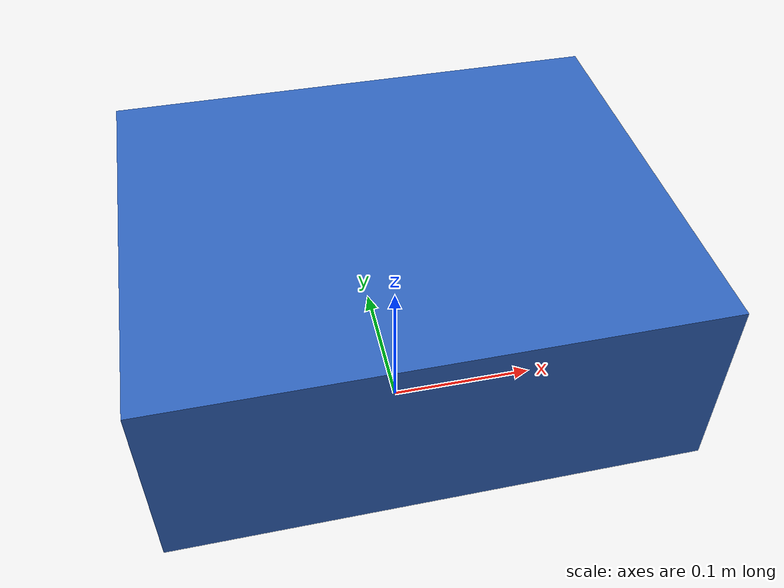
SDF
<?xml version="1.0"?>
<sdf version="1.9">
  <model name="inspection_camera_bot">
    <static>true</static>
    <pose>0 0 0.12 0 0 0</pose>

    <link name="base_link">
      <inertial>
        <mass>5.0</mass>
        <inertia>
          <ixx>0.05</ixx>
          <iyy>0.05</iyy>
          <izz>0.08</izz>
        </inertia>
      </inertial>

      <collision name="base_collision">
        <geometry>
          <box>
            <size>0.32 0.26 0.12</size>
          </box>
        </geometry>
      </collision>

      <visual name="base_visual">
        <geometry>
          <box>
            <size>0.32 0.26 0.12</size>
          </box>
        </geometry>
        <material>
          <ambient>0.18 0.38 0.72 1.0</ambient>
          <diffuse>0.18 0.38 0.72 1.0</diffuse>
        </material>
      </visual>

      <sensor name="front_camera" type="camera">
        <pose>0.14 0 0.10 0 0 0</pose>
        <always_on>true</always_on>
        <update_rate>10</update_rate>
        <topic>/camera</topic>
        <camera>
          <horizontal_fov>1.3962634</horizontal_fov>
          <image>
            <width>1280</width>
            <height>720</height>
            <format>R8G8B8</format>
          </image>
          <clip>
            <near>0.05</near>
            <far>20.0</far>
          </clip>
        </camera>
        <visualize>true</visualize>
      </sensor>
    </link>
  </model>
</sdf>
